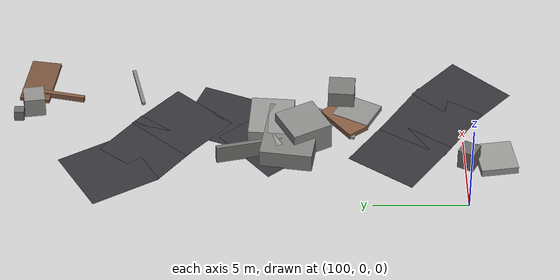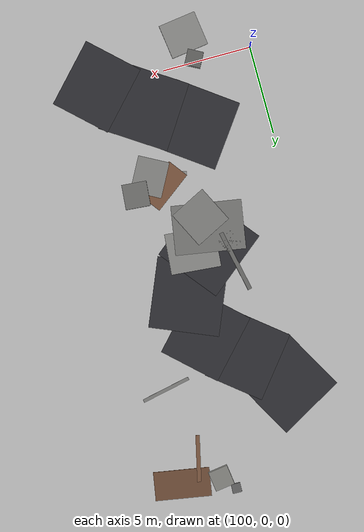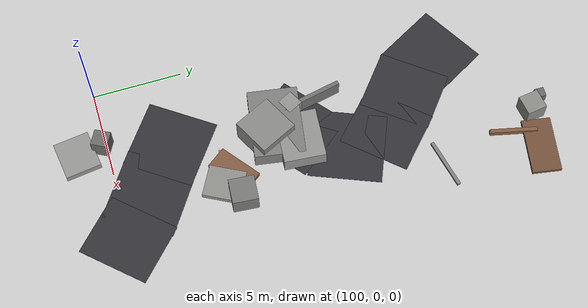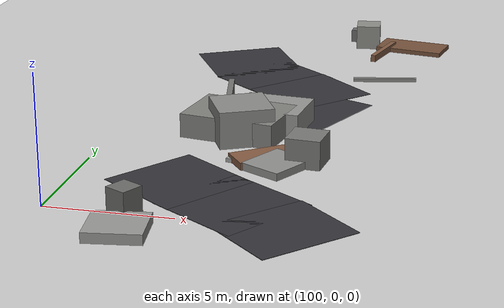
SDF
<sdf version="1.6">
 <world name="navitas_arena">
  <model name="ground_plane">
   <static>true</static>
   <link name="link">
    <collision name="collision">
     <geometry><plane><normal>0 0 1</normal><size>400 400</size></plane></geometry>
     <surface><friction><ode><mu>0.8</mu><mu2>0.8</mu2></ode></friction></surface>
    </collision>
    <visual name="visual">
     <cast_shadows>false</cast_shadows>
     <geometry><plane><normal>0 0 1</normal><size>400 400</size></plane></geometry>
     <material>
      <script><uri>file://media/materials/scripts/gazebo.material</uri><name>Gazebo/Grey</name></script>
     </material>
    </visual>
   </link>
  </model>
  <model name="road_zor_3_12">
   <static>true</static>
   <pose>108.898 -0.125 0.040 0 0 2.391</pose>
   <link name="link">
    <collision name="col"><geometry><box><size>3.467 4.000 0.020</size></box></geometry></collision>
    <visual name="vis">
     <geometry><box><size>3.467 4.000 0.020</size></box></geometry>
     <material><ambient>0.20 0.20 0.22 1</ambient><diffuse>0.20 0.20 0.22 1</diffuse></material>
    </visual>
   </link>
  </model>
  <model name="road_zor_3_13">
   <static>true</static>
   <pose>106.638 1.625 0.040 0 0 2.557</pose>
   <link name="link">
    <collision name="col"><geometry><box><size>4.070 4.000 0.020</size></box></geometry></collision>
    <visual name="vis">
     <geometry><box><size>4.070 4.000 0.020</size></box></geometry>
     <material><ambient>0.20 0.20 0.22 1</ambient><diffuse>0.20 0.20 0.22 1</diffuse></material>
    </visual>
   </link>
  </model>
  <model name="road_zor_3_14">
   <static>true</static>
   <pose>104.109 3.375 0.040 0 0 2.514</pose>
   <link name="link">
    <collision name="col"><geometry><box><size>3.882 4.000 0.020</size></box></geometry></collision>
    <visual name="vis">
     <geometry><box><size>3.882 4.000 0.020</size></box></geometry>
     <material><ambient>0.20 0.20 0.22 1</ambient><diffuse>0.20 0.20 0.22 1</diffuse></material>
    </visual>
   </link>
  </model>
  <model name="road_zor_3_17">
   <static>true</static>
   <pose>105.166 10.157 0.040 0 0 0.677</pose>
   <link name="link">
    <collision name="col"><geometry><box><size>4.173 4.000 0.020</size></box></geometry></collision>
    <visual name="vis">
     <geometry><box><size>4.173 4.000 0.020</size></box></geometry>
     <material><ambient>0.20 0.20 0.22 1</ambient><diffuse>0.20 0.20 0.22 1</diffuse></material>
    </visual>
   </link>
  </model>
  <model name="road_zor_3_18">
   <static>true</static>
   <pose>107.048 12.629 0.040 0 0 1.174</pose>
   <link name="link">
    <collision name="col"><geometry><box><size>4.038 4.000 0.020</size></box></geometry></collision>
    <visual name="vis">
     <geometry><box><size>4.038 4.000 0.020</size></box></geometry>
     <material><ambient>0.20 0.20 0.22 1</ambient><diffuse>0.20 0.20 0.22 1</diffuse></material>
    </visual>
   </link>
  </model>
  <model name="road_zor_3_19">
   <static>true</static>
   <pose>106.675 14.984 0.040 0 0 2.394</pose>
   <link name="link">
    <collision name="col"><geometry><box><size>3.571 4.000 0.020</size></box></geometry></collision>
    <visual name="vis">
     <geometry><box><size>3.571 4.000 0.020</size></box></geometry>
     <material><ambient>0.20 0.20 0.22 1</ambient><diffuse>0.20 0.20 0.22 1</diffuse></material>
    </visual>
   </link>
  </model>
  <model name="road_zor_3_20">
   <static>true</static>
   <pose>104.697 16.696 0.040 0 0 2.464</pose>
   <link name="link">
    <collision name="col"><geometry><box><size>3.464 4.000 0.020</size></box></geometry></collision>
    <visual name="vis">
     <geometry><box><size>3.464 4.000 0.020</size></box></geometry>
     <material><ambient>0.20 0.20 0.22 1</ambient><diffuse>0.20 0.20 0.22 1</diffuse></material>
    </visual>
   </link>
  </model>
  <model name="road_zor_3_21">
   <static>true</static>
   <pose>102.959 18.815 0.040 0 0 2.083</pose>
   <link name="link">
    <collision name="col"><geometry><box><size>3.917 4.000 0.020</size></box></geometry></collision>
    <visual name="vis">
     <geometry><box><size>3.917 4.000 0.020</size></box></geometry>
     <material><ambient>0.20 0.20 0.22 1</ambient><diffuse>0.20 0.20 0.22 1</diffuse></material>
    </visual>
   </link>
  </model>
  <model name="blk_zor_3_2_0">
   <static>true</static>
   <pose>105.089 8.154 0.500 0 0 0.528</pose>
   <link name="link">
    <collision name="col"><geometry><box><size>1.329 1.329 1.000</size></box></geometry></collision>
    <visual name="vis">
     <geometry><box><size>1.329 1.329 1.000</size></box></geometry>
     <material><ambient>0.48 0.48 0.47 1</ambient><diffuse>0.48 0.48 0.47 1</diffuse></material>
    </visual>
   </link>
  </model>
  <model name="blk_zor_3_2_1">
   <static>true</static>
   <pose>103.963 11.405 0.500 0 0 1.779</pose>
   <link name="link">
    <collision name="col"><geometry><box><size>3.544 0.238 1.000</size></box></geometry></collision>
    <visual name="vis">
     <geometry><box><size>3.544 0.238 1.000</size></box></geometry>
     <material><ambient>0.45 0.45 0.44 1</ambient><diffuse>0.45 0.45 0.44 1</diffuse></material>
    </visual>
   </link>
  </model>
  <model name="blk_zor_3_2_2">
   <static>true</static>
   <pose>104.938 9.178 0.500 0 0 2.978</pose>
   <link name="link">
    <collision name="col"><geometry><box><size>3.986 2.786 1.000</size></box></geometry></collision>
    <visual name="vis">
     <geometry><box><size>3.986 2.786 1.000</size></box></geometry>
     <material><ambient>0.50 0.50 0.49 1</ambient><diffuse>0.50 0.50 0.49 1</diffuse></material>
    </visual>
   </link>
  </model>
  <model name="blk_zor_3_2_3">
   <static>true</static>
   <pose>105.207 8.521 0.764 0 0 0.463</pose>
   <link name="link">
    <collision name="col"><geometry><box><size>2.236 2.236 1.528</size></box></geometry></collision>
    <visual name="vis">
     <geometry><box><size>2.236 2.236 1.528</size></box></geometry>
     <material><ambient>0.54 0.54 0.53 1</ambient><diffuse>0.54 0.54 0.53 1</diffuse></material>
    </visual>
   </link>
  </model>
  <model name="blk_zor_3_2_4">
   <static>true</static>
   <pose>106.120 10.192 0.500 0 0 3.055</pose>
   <link name="link">
    <collision name="col"><geometry><box><size>2.831 2.308 1.000</size></box></geometry></collision>
    <visual name="vis">
     <geometry><box><size>2.831 2.308 1.000</size></box></geometry>
     <material><ambient>0.58 0.58 0.57 1</ambient><diffuse>0.58 0.58 0.57 1</diffuse></material>
    </visual>
   </link>
  </model>
  <model name="blk_zor_3_2_5">
   <static>true</static>
   <pose>104.005 10.251 0.500 0 0 2.051</pose>
   <link name="link">
    <collision name="col"><geometry><box><size>0.906 0.906 1.000</size></box></geometry></collision>
    <visual name="vis">
     <geometry><box><size>0.906 0.906 1.000</size></box></geometry>
     <material><ambient>0.58 0.58 0.57 1</ambient><diffuse>0.58 0.58 0.57 1</diffuse></material>
    </visual>
   </link>
  </model>
  <model name="deb_zor_2">
   <static>true</static>
   <pose>107.946 22.949 0.553 0 0 1.706</pose>
   <link name="link">
    <collision name="col"><geometry><box><size>1.120 1.120 1.106</size></box></geometry></collision>
    <visual name="vis">
     <geometry><box><size>1.120 1.120 1.106</size></box></geometry>
     <material><ambient>0.55 0.55 0.53 1</ambient><diffuse>0.55 0.55 0.53 1</diffuse></material>
    </visual>
   </link>
  </model>
  <model name="deb_zor_17">
   <static>true</static>
   <pose>106.565 5.639 0.079 0 0 2.936</pose>
   <link name="link">
    <collision name="col"><geometry><box><size>2.575 0.231 0.159</size></box></geometry></collision>
    <visual name="vis">
     <geometry><box><size>2.575 0.231 0.159</size></box></geometry>
     <material><ambient>0.61 0.61 0.60 1</ambient><diffuse>0.61 0.61 0.60 1</diffuse></material>
    </visual>
   </link>
  </model>
  <model name="deb_zor_62">
   <static>true</static>
   <pose>108.907 21.577 0.156 0 0 1.342</pose>
   <link name="link">
    <collision name="col"><geometry><box><size>2.619 0.228 0.312</size></box></geometry></collision>
    <visual name="vis">
     <geometry><box><size>2.619 0.228 0.312</size></box></geometry>
     <material><ambient>0.51 0.36 0.26 1</ambient><diffuse>0.51 0.36 0.26 1</diffuse></material>
    </visual>
   </link>
  </model>
  <model name="deb_zor_86">
   <static>true</static>
   <pose>103.210 -0.172 0.567 0 0 2.649</pose>
   <link name="link">
    <collision name="col"><geometry><box><size>0.907 0.907 1.134</size></box></geometry></collision>
    <visual name="vis">
     <geometry><box><size>0.907 0.907 1.134</size></box></geometry>
     <material><ambient>0.42 0.42 0.41 1</ambient><diffuse>0.42 0.42 0.41 1</diffuse></material>
    </visual>
   </link>
  </model>
  <model name="deb_zor_100">
   <static>true</static>
   <pose>106.708 6.276 0.145 0 0 0.642</pose>
   <link name="link">
    <collision name="col"><geometry><box><size>2.524 1.270 0.289</size></box></geometry></collision>
    <visual name="vis">
     <geometry><box><size>2.524 1.270 0.289</size></box></geometry>
     <material><ambient>0.52 0.36 0.26 1</ambient><diffuse>0.52 0.36 0.26 1</diffuse></material>
    </visual>
   </link>
  </model>
  <model name="deb_zor_134">
   <static>true</static>
   <pose>109.644 17.366 0.079 0 0 0.205</pose>
   <link name="link">
    <collision name="col"><geometry><box><size>2.824 0.187 0.159</size></box></geometry></collision>
    <visual name="vis">
     <geometry><box><size>2.824 0.187 0.159</size></box></geometry>
     <material><ambient>0.52 0.52 0.51 1</ambient><diffuse>0.52 0.52 0.51 1</diffuse></material>
    </visual>
   </link>
  </model>
  <model name="deb_zor_158">
   <static>true</static>
   <pose>107.361 5.568 0.152 0 0 1.075</pose>
   <link name="link">
    <collision name="col"><geometry><box><size>2.064 1.800 0.305</size></box></geometry></collision>
    <visual name="vis">
     <geometry><box><size>2.064 1.800 0.305</size></box></geometry>
     <material><ambient>0.56 0.56 0.55 1</ambient><diffuse>0.56 0.56 0.55 1</diffuse></material>
    </visual>
   </link>
  </model>
  <model name="deb_zor_169">
   <static>true</static>
   <pose>110.153 22.728 0.102 0 0 2.972</pose>
   <link name="link">
    <collision name="col"><geometry><box><size>3.168 1.612 0.203</size></box></geometry></collision>
    <visual name="vis">
     <geometry><box><size>3.168 1.612 0.203</size></box></geometry>
     <material><ambient>0.46 0.32 0.23 1</ambient><diffuse>0.46 0.32 0.23 1</diffuse></material>
    </visual>
   </link>
  </model>
  <model name="deb_zor_193">
   <static>true</static>
   <pose>103.432 -1.632 0.198 0 0 1.706</pose>
   <link name="link">
    <collision name="col"><geometry><box><size>1.969 2.151 0.397</size></box></geometry></collision>
    <visual name="vis">
     <geometry><box><size>1.969 2.151 0.397</size></box></geometry>
     <material><ambient>0.59 0.59 0.58 1</ambient><diffuse>0.59 0.59 0.58 1</diffuse></material>
    </visual>
   </link>
  </model>
  <model name="deb_zor_196">
   <static>true</static>
   <pose>107.279 23.731 0.295 0 0 3.109</pose>
   <link name="link">
    <collision name="col"><geometry><box><size>0.526 0.526 0.590</size></box></geometry></collision>
    <visual name="vis">
     <geometry><box><size>0.526 0.526 0.590</size></box></geometry>
     <material><ambient>0.41 0.41 0.41 1</ambient><diffuse>0.41 0.41 0.41 1</diffuse></material>
    </visual>
   </link>
  </model>
  <model name="deb_zor_208">
   <static>true</static>
   <pose>108.373 6.377 0.589 0 0 1.487</pose>
   <link name="link">
    <collision name="col"><geometry><box><size>1.408 1.408 1.177</size></box></geometry></collision>
    <visual name="vis">
     <geometry><box><size>1.408 1.408 1.177</size></box></geometry>
     <material><ambient>0.47 0.47 0.46 1</ambient><diffuse>0.47 0.47 0.46 1</diffuse></material>
    </visual>
   </link>
  </model>
 </world>
</sdf>
